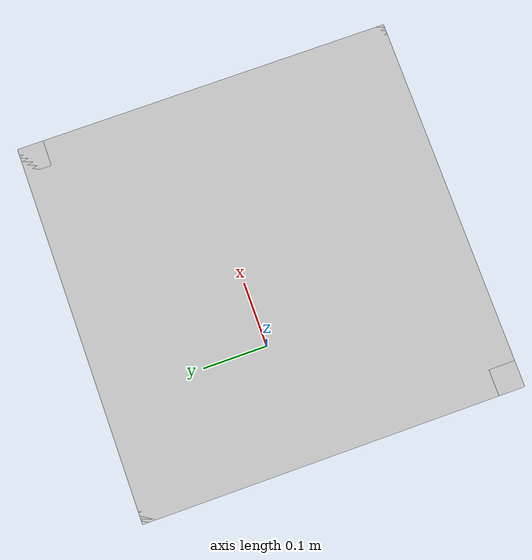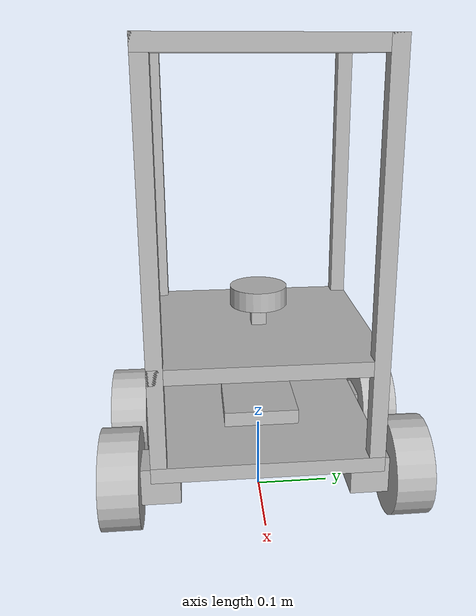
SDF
<sdf version='1.7'>
  <model name='bot'>
    <link name='base_footprint'>
      <inertial>
        <pose>0 -0 0.265314 0 -0 0</pose>
        <mass>5.2535</mass>
        <inertia>
          <ixx>0.26358</ixx>
          <ixy>-8.67362e-19</ixy>
          <ixz>0</ixz>
          <iyy>0.241765</iyy>
          <iyz>-2.12072e-18</iyz>
          <izz>0.117714</izz>
        </inertia>
      </inertial>
      <collision name='base_footprint_fixed_joint_lump__base_link_collision'>
        <pose>0 0 0.1125 0 -0 0</pose>
        <geometry>
          <box>
            <size>0.29 0.29 0.02</size>
          </box>
        </geometry>
      </collision>
      <collision name='base_footprint_fixed_joint_lump__control_link1_collision_1'>
        <pose>0 0 0.1325 0 -0 0</pose>
        <geometry>
          <box>
            <size>0.1 0.1 0.02</size>
          </box>
        </geometry>
      </collision>
      <collision name='base_footprint_fixed_joint_lump__motor_link1_collision_2'>
        <pose>0.09 0.135 0.0775 0 -0 0</pose>
        <geometry>
          <box>
            <size>0.05 0.05 0.05</size>
          </box>
        </geometry>
      </collision>
      <collision name='base_footprint_fixed_joint_lump__motor_link2_collision_3'>
        <pose>-0.09 0.135 0.0775 0 -0 0</pose>
        <geometry>
          <box>
            <size>0.05 0.05 0.05</size>
          </box>
        </geometry>
      </collision>
      <collision name='base_footprint_fixed_joint_lump__motor_link3_collision_4'>
        <pose>0.09 -0.135 0.0775 0 -0 0</pose>
        <geometry>
          <box>
            <size>0.05 0.05 0.05</size>
          </box>
        </geometry>
      </collision>
      <collision name='base_footprint_fixed_joint_lump__motor_link4_collision_5'>
        <pose>-0.09 -0.135 0.0775 0 -0 0</pose>
        <geometry>
          <box>
            <size>0.05 0.05 0.05</size>
          </box>
        </geometry>
      </collision>
      <collision name='base_footprint_fixed_joint_lump__pillar_link1_collision_6'>
        <pose>0.135 0.135 0.3725 0 -0 0</pose>
        <geometry>
          <box>
            <size>0.02 0.02 0.5</size>
          </box>
        </geometry>
      </collision>
      <collision name='base_footprint_fixed_joint_lump__pillar_link2_collision_7'>
        <pose>-0.135 0.135 0.3725 0 -0 0</pose>
        <geometry>
          <box>
            <size>0.02 0.02 0.5</size>
          </box>
        </geometry>
      </collision>
      <collision name='base_footprint_fixed_joint_lump__pillar_link3_collision_8'>
        <pose>0.135 -0.135 0.3725 0 -0 0</pose>
        <geometry>
          <box>
            <size>0.02 0.02 0.5</size>
          </box>
        </geometry>
      </collision>
      <collision name='base_footprint_fixed_joint_lump__pillar_link4_collision_9'>
        <pose>-0.135 -0.135 0.3725 0 -0 0</pose>
        <geometry>
          <box>
            <size>0.02 0.02 0.5</size>
          </box>
        </geometry>
      </collision>
      <collision name='base_footprint_fixed_joint_lump__platform_link_collision_10'>
        <pose>0 0 0.2425 0 -0 0</pose>
        <geometry>
          <box>
            <size>0.29 0.29 0.02</size>
          </box>
        </geometry>
      </collision>
      <collision name='base_footprint_fixed_joint_lump__imu_link_collision_11'>
        <pose>0 0 0.2625 0 -0 0</pose>
        <geometry>
          <box>
            <size>0.01 0.01 0.002</size>
          </box>
        </geometry>
        <surface>
          <contact>
            <ode/>
          </contact>
          <friction>
            <ode/>
          </friction>
        </surface>
      </collision>
      <collision name='base_footprint_fixed_joint_lump__laser_link_collision_12'>
        <pose>0 0 0.2925 0 -0 0</pose>
        <geometry>
          <cylinder>
            <length>0.026</length>
            <radius>0.038</radius>
          </cylinder>
        </geometry>
        <surface>
          <contact>
            <ode/>
          </contact>
          <friction>
            <ode/>
          </friction>
        </surface>
      </collision>
      <collision name='base_footprint_fixed_joint_lump__uplatform_link_collision_13'>
        <pose>0 0 0.6125 0 -0 0</pose>
        <geometry>
          <box>
            <size>0.29 0.29 0.02</size>
          </box>
        </geometry>
      </collision>
      <visual name='base_footprint_fixed_joint_lump__base_link_visual'>
        <pose>0 0 0.1125 0 -0 0</pose>
        <geometry>
          <box>
            <size>0.29 0.29 0.02</size>
          </box>
        </geometry>
      </visual>
      <visual name='base_footprint_fixed_joint_lump__control_link1_visual_1'>
        <pose>0 0 0.1325 0 -0 0</pose>
        <geometry>
          <box>
            <size>0.1 0.1 0.02</size>
          </box>
        </geometry>
      </visual>
      <visual name='base_footprint_fixed_joint_lump__motor_link1_visual_2'>
        <pose>0.09 0.135 0.0775 0 -0 0</pose>
        <geometry>
          <box>
            <size>0.05 0.05 0.05</size>
          </box>
        </geometry>
      </visual>
      <visual name='base_footprint_fixed_joint_lump__motor_link2_visual_3'>
        <pose>-0.09 0.135 0.0775 0 -0 0</pose>
        <geometry>
          <box>
            <size>0.05 0.05 0.05</size>
          </box>
        </geometry>
      </visual>
      <visual name='base_footprint_fixed_joint_lump__motor_link3_visual_4'>
        <pose>0.09 -0.135 0.0775 0 -0 0</pose>
        <geometry>
          <box>
            <size>0.05 0.05 0.05</size>
          </box>
        </geometry>
      </visual>
      <visual name='base_footprint_fixed_joint_lump__motor_link4_visual_5'>
        <pose>-0.09 -0.135 0.0775 0 -0 0</pose>
        <geometry>
          <box>
            <size>0.05 0.05 0.05</size>
          </box>
        </geometry>
      </visual>
      <visual name='base_footprint_fixed_joint_lump__pillar_link1_visual_6'>
        <pose>0.135 0.135 0.3725 0 -0 0</pose>
        <geometry>
          <box>
            <size>0.02 0.02 0.5</size>
          </box>
        </geometry>
      </visual>
      <visual name='base_footprint_fixed_joint_lump__pillar_link2_visual_7'>
        <pose>-0.135 0.135 0.3725 0 -0 0</pose>
        <geometry>
          <box>
            <size>0.02 0.02 0.5</size>
          </box>
        </geometry>
      </visual>
      <visual name='base_footprint_fixed_joint_lump__pillar_link3_visual_8'>
        <pose>0.135 -0.135 0.3725 0 -0 0</pose>
        <geometry>
          <box>
            <size>0.02 0.02 0.5</size>
          </box>
        </geometry>
      </visual>
      <visual name='base_footprint_fixed_joint_lump__pillar_link4_visual_9'>
        <pose>-0.135 -0.135 0.3725 0 -0 0</pose>
        <geometry>
          <box>
            <size>0.02 0.02 0.5</size>
          </box>
        </geometry>
      </visual>
      <visual name='base_footprint_fixed_joint_lump__platform_link_visual_10'>
        <pose>0 0 0.2425 0 -0 0</pose>
        <geometry>
          <box>
            <size>0.29 0.29 0.02</size>
          </box>
        </geometry>
      </visual>
      <visual name='base_footprint_fixed_joint_lump__imu_link_visual_11'>
        <pose>0 0 0.2625 0 -0 0</pose>
        <geometry>
          <box>
            <size>0.02 0.02 0.02</size>
          </box>
        </geometry>
      </visual>
      <visual name='base_footprint_fixed_joint_lump__laser_link_visual_12'>
        <pose>0 0 0.2925 0 -0 0</pose>
        <geometry>
          <cylinder>
            <length>0.026</length>
            <radius>0.038</radius>
          </cylinder>
        </geometry>
      </visual>
      <visual name='base_footprint_fixed_joint_lump__uplatform_link_visual_13'>
        <pose>0 0 0.6125 0 -0 0</pose>
        <geometry>
          <box>
            <size>0.29 0.29 0.02</size>
          </box>
        </geometry>
      </visual>
      <sensor name='imu_sensor' type='imu'>
        <plugin name='imu_plugin' filename='libgazebo_ros_imu_sensor.so'>
          <ros>
            <namespace>/</namespace>
            <remapping>~/out:=imu</remapping>
          </ros>
          <initial_orientation_as_reference>0</initial_orientation_as_reference>
        </plugin>
        <always_on>1</always_on>
        <update_rate>100</update_rate>
        <visualize>1</visualize>
        <imu>
          <angular_velocity>
            <x>
              <noise type='gaussian'>
                <mean>0</mean>
                <stddev>0.0002</stddev>
                <bias_mean>7.5e-06</bias_mean>
                <bias_stddev>8e-07</bias_stddev>
              </noise>
            </x>
            <y>
              <noise type='gaussian'>
                <mean>0</mean>
                <stddev>0.0002</stddev>
                <bias_mean>7.5e-06</bias_mean>
                <bias_stddev>8e-07</bias_stddev>
              </noise>
            </y>
            <z>
              <noise type='gaussian'>
                <mean>0</mean>
                <stddev>0.0002</stddev>
                <bias_mean>7.5e-06</bias_mean>
                <bias_stddev>8e-07</bias_stddev>
              </noise>
            </z>
          </angular_velocity>
          <linear_acceleration>
            <x>
              <noise type='gaussian'>
                <mean>0</mean>
                <stddev>0.017</stddev>
                <bias_mean>0.1</bias_mean>
                <bias_stddev>0.001</bias_stddev>
              </noise>
            </x>
            <y>
              <noise type='gaussian'>
                <mean>0</mean>
                <stddev>0.017</stddev>
                <bias_mean>0.1</bias_mean>
                <bias_stddev>0.001</bias_stddev>
              </noise>
            </y>
            <z>
              <noise type='gaussian'>
                <mean>0</mean>
                <stddev>0.017</stddev>
                <bias_mean>0.1</bias_mean>
                <bias_stddev>0.001</bias_stddev>
              </noise>
            </z>
          </linear_acceleration>
        </imu>
        <pose>0 0 0.2625 0 -0 0</pose>
      </sensor>
      <sensor name='laser_sensor' type='ray'>
        <always_on>1</always_on>
        <visualize>1</visualize>
        <update_rate>5</update_rate>
        <ray>
          <scan>
            <horizontal>
              <samples>360</samples>
              <resolution>1</resolution>
              <min_angle>0</min_angle>
              <max_angle>6.28</max_angle>
            </horizontal>
          </scan>
          <range>
            <min>0.1</min>
            <max>11</max>
            <resolution>0.015</resolution>
          </range>
          <noise>
            <type>gaussian</type>
            <mean>0</mean>
            <stddev>0.01</stddev>
          </noise>
        </ray>
        <plugin name='laserscan' filename='libgazebo_ros_ray_sensor.so'>
          <ros>
            <remapping>~/out:=scan</remapping>
          </ros>
          <output_type>sensor_msgs/LaserScan</output_type>
          <frame_name>laser_link</frame_name>
        </plugin>
        <pose>0 0 0.2925 0 -0 0</pose>
      </sensor>
    </link>
    <joint name='wheel_joint1' type='revolute'>
      <pose relative_to='base_footprint'>0.09 0.185 0.0775 0 -0 0</pose>
      <parent>base_footprint</parent>
      <child>wheel_link1</child>
      <axis>
        <xyz>0 1 0</xyz>
        <limit>
          <lower>-1e+16</lower>
          <upper>1e+16</upper>
        </limit>
        <dynamics>
          <spring_reference>0</spring_reference>
          <spring_stiffness>0</spring_stiffness>
        </dynamics>
      </axis>
    </joint>
    <link name='wheel_link1'>
      <pose relative_to='wheel_joint1'>0 0 0 0 -0 0</pose>
      <inertial>
        <pose>0 0 0 0 -0 0</pose>
        <mass>0.24</mass>
        <inertia>
          <ixx>0.000284375</ixx>
          <ixy>0</ixy>
          <ixz>0</ixz>
          <iyy>0.000284375</iyy>
          <iyz>0</iyz>
          <izz>0.046875</izz>
        </inertia>
      </inertial>
      <collision name='wheel_link1_collision'>
        <pose>0 0 0 1.57079 -0 0</pose>
        <geometry>
          <cylinder>
            <length>0.05</length>
            <radius>0.065</radius>
          </cylinder>
        </geometry>
      </collision>
      <visual name='wheel_link1_visual'>
        <pose>0 0 0 1.57079 -0 0</pose>
        <geometry>
          <cylinder>
            <length>0.05</length>
            <radius>0.065</radius>
          </cylinder>
        </geometry>
      </visual>
    </link>
    <joint name='wheel_joint2' type='revolute'>
      <pose relative_to='base_footprint'>-0.09 0.185 0.0775 0 -0 0</pose>
      <parent>base_footprint</parent>
      <child>wheel_link2</child>
      <axis>
        <xyz>0 1 0</xyz>
        <limit>
          <lower>-1e+16</lower>
          <upper>1e+16</upper>
        </limit>
        <dynamics>
          <spring_reference>0</spring_reference>
          <spring_stiffness>0</spring_stiffness>
        </dynamics>
      </axis>
    </joint>
    <link name='wheel_link2'>
      <pose relative_to='wheel_joint2'>0 0 0 0 -0 0</pose>
      <inertial>
        <pose>0 0 0 0 -0 0</pose>
        <mass>0.24</mass>
        <inertia>
          <ixx>0.000284375</ixx>
          <ixy>0</ixy>
          <ixz>0</ixz>
          <iyy>0.000284375</iyy>
          <iyz>0</iyz>
          <izz>0.046875</izz>
        </inertia>
      </inertial>
      <collision name='wheel_link2_collision'>
        <pose>0 0 0 1.57079 -0 0</pose>
        <geometry>
          <cylinder>
            <length>0.05</length>
            <radius>0.065</radius>
          </cylinder>
        </geometry>
      </collision>
      <visual name='wheel_link2_visual'>
        <pose>0 0 0 1.57079 -0 0</pose>
        <geometry>
          <cylinder>
            <length>0.05</length>
            <radius>0.065</radius>
          </cylinder>
        </geometry>
      </visual>
    </link>
    <joint name='wheel_joint3' type='revolute'>
      <pose relative_to='base_footprint'>0.09 -0.185 0.0775 0 -0 0</pose>
      <parent>base_footprint</parent>
      <child>wheel_link3</child>
      <axis>
        <xyz>0 1 0</xyz>
        <limit>
          <lower>-1e+16</lower>
          <upper>1e+16</upper>
        </limit>
        <dynamics>
          <spring_reference>0</spring_reference>
          <spring_stiffness>0</spring_stiffness>
        </dynamics>
      </axis>
    </joint>
    <link name='wheel_link3'>
      <pose relative_to='wheel_joint3'>0 0 0 0 -0 0</pose>
      <inertial>
        <pose>0 0 0 0 -0 0</pose>
        <mass>0.24</mass>
        <inertia>
          <ixx>0.000284375</ixx>
          <ixy>0</ixy>
          <ixz>0</ixz>
          <iyy>0.000284375</iyy>
          <iyz>0</iyz>
          <izz>0.046875</izz>
        </inertia>
      </inertial>
      <collision name='wheel_link3_collision'>
        <pose>0 0 0 1.57079 -0 0</pose>
        <geometry>
          <cylinder>
            <length>0.05</length>
            <radius>0.065</radius>
          </cylinder>
        </geometry>
      </collision>
      <visual name='wheel_link3_visual'>
        <pose>0 0 0 1.57079 -0 0</pose>
        <geometry>
          <cylinder>
            <length>0.05</length>
            <radius>0.065</radius>
          </cylinder>
        </geometry>
      </visual>
    </link>
    <joint name='wheel_joint4' type='revolute'>
      <pose relative_to='base_footprint'>-0.09 -0.185 0.0775 0 -0 0</pose>
      <parent>base_footprint</parent>
      <child>wheel_link4</child>
      <axis>
        <xyz>0 1 0</xyz>
        <limit>
          <lower>-1e+16</lower>
          <upper>1e+16</upper>
        </limit>
        <dynamics>
          <spring_reference>0</spring_reference>
          <spring_stiffness>0</spring_stiffness>
        </dynamics>
      </axis>
    </joint>
    <link name='wheel_link4'>
      <pose relative_to='wheel_joint4'>0 0 0 0 -0 0</pose>
      <inertial>
        <pose>0 0 0 0 -0 0</pose>
        <mass>0.24</mass>
        <inertia>
          <ixx>0.000284375</ixx>
          <ixy>0</ixy>
          <ixz>0</ixz>
          <iyy>0.000284375</iyy>
          <iyz>0</iyz>
          <izz>0.046875</izz>
        </inertia>
      </inertial>
      <collision name='wheel_link4_collision'>
        <pose>0 0 0 1.57079 -0 0</pose>
        <geometry>
          <cylinder>
            <length>0.05</length>
            <radius>0.065</radius>
          </cylinder>
        </geometry>
      </collision>
      <visual name='wheel_link4_visual'>
        <pose>0 0 0 1.57079 -0 0</pose>
        <geometry>
          <cylinder>
            <length>0.05</length>
            <radius>0.065</radius>
          </cylinder>
        </geometry>
      </visual>
    </link>
    <static>0</static>
    <plugin name='diff_drive' filename='libgazebo_ros_planar_move.so'>
      <ros>
        <namespace>/</namespace>
        <remapping>cmd_vel:=cmd_vel</remapping>
        <remapping>odom:=odom</remapping>
      </ros>
      <update_rate>30</update_rate>
      <leftFrontJoint>wheel_joint1</leftFrontJoint>
      <leftRearJoint>wheel_joint2</leftRearJoint>
      <rightFrontJoint>wheel_joint3</rightFrontJoint>
      <rightRearJoint>wheel_joint4</rightRearJoint>
      <max_wheel_torque>20</max_wheel_torque>
      <max_wheel_acceleration>1.0</max_wheel_acceleration>
      <publish_odom>1</publish_odom>
      <publish_odom_tf>1</publish_odom_tf>
      <publish_wheel_tf>1</publish_wheel_tf>
      <odometry_frame>odom</odometry_frame>
      <robot_base_frame>base_footprint</robot_base_frame>
    </plugin>
    <plugin name='fishbot_joint_state' filename='libgazebo_ros_joint_state_publisher.so'>
      <ros>
        <remapping>~/out:=joint_states</remapping>
      </ros>
      <update_rate>30</update_rate>
      <joint_name>wheel_joint1</joint_name>
      <joint_name>wheel_joint2</joint_name>
      <joint_name>wheel_joint3</joint_name>
      <joint_name>wheel_joint4</joint_name>
    </plugin>
  </model>
</sdf>
